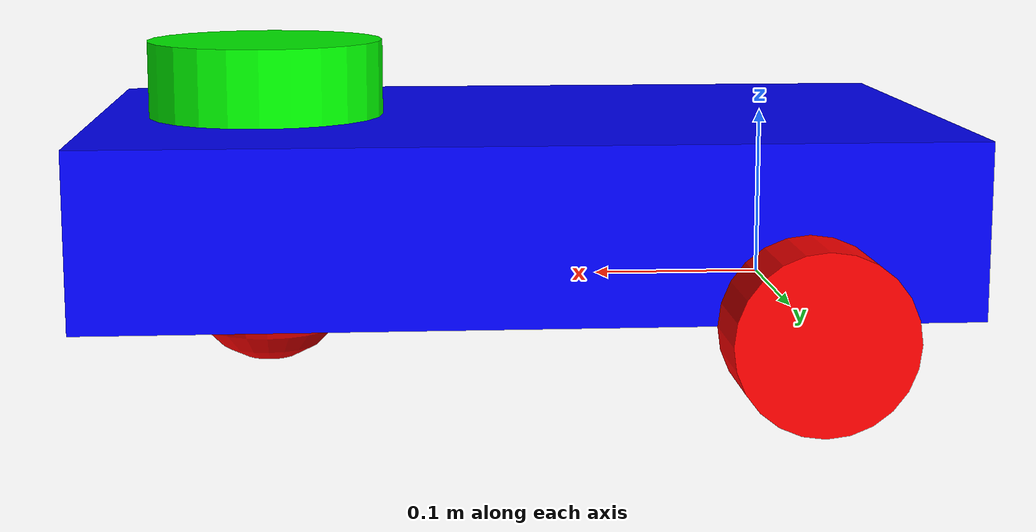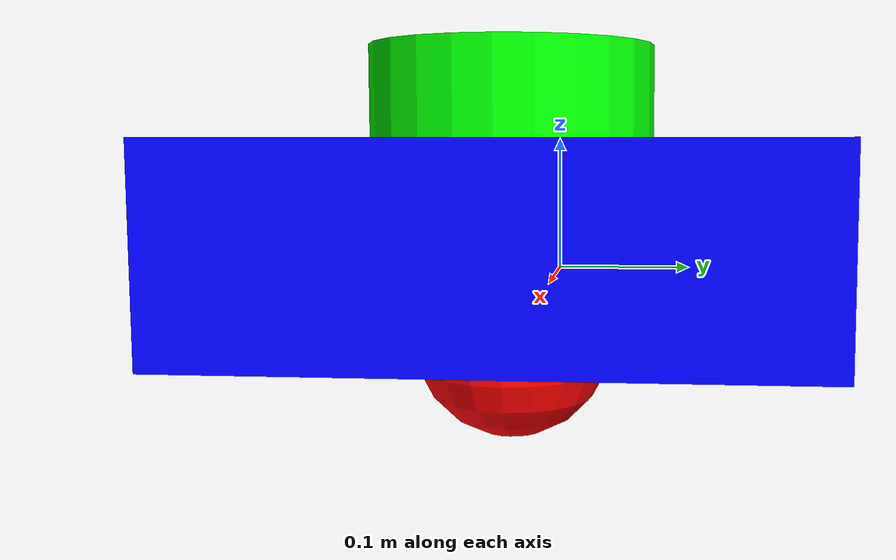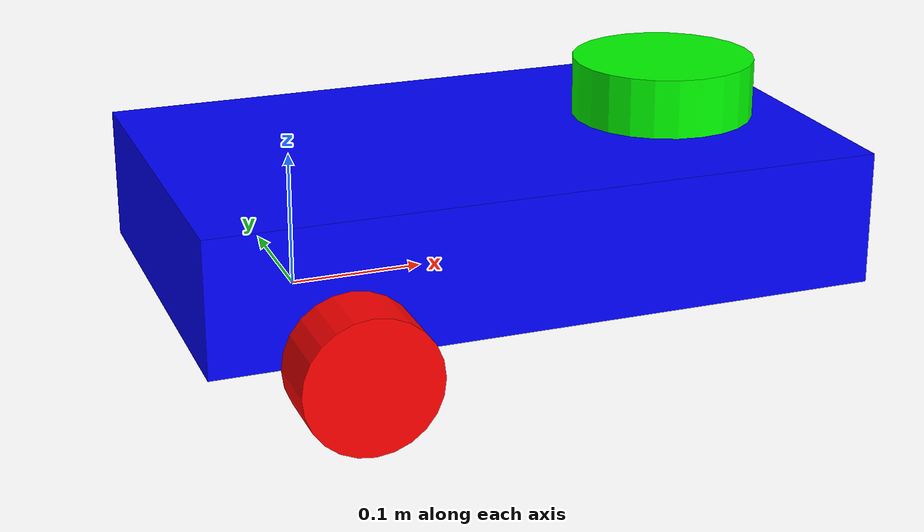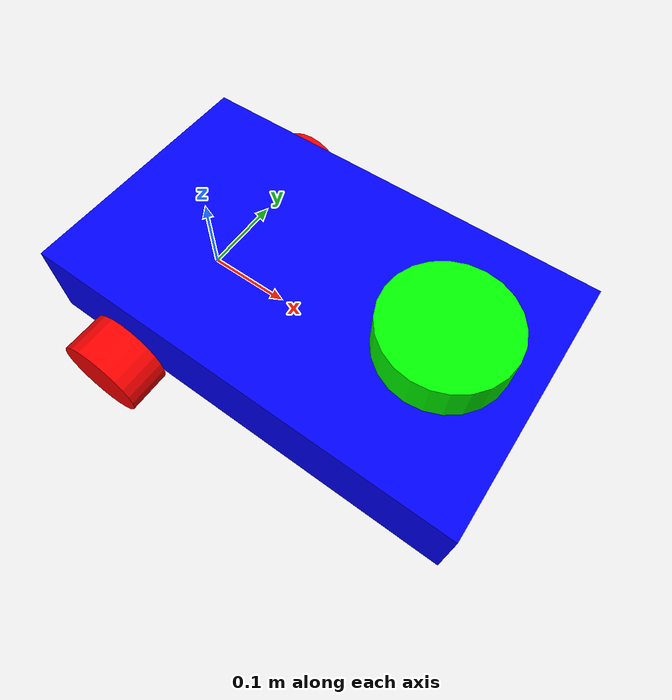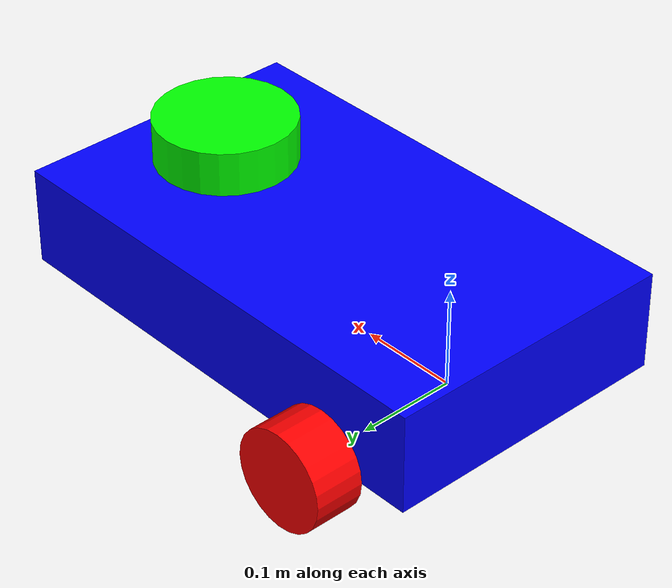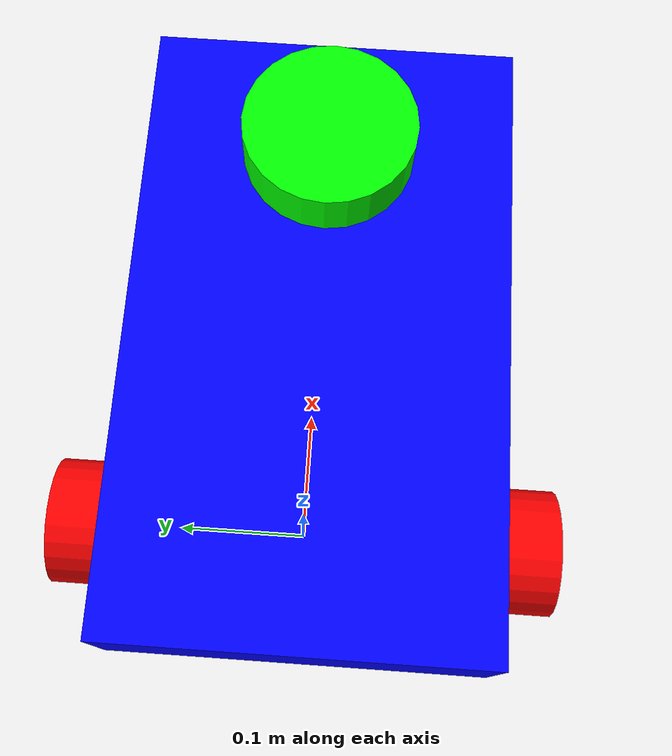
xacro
<?xml version = "1.0"?>
<robot xmlns:xacro="http://www.ros.org/wiki/xacro">

<xacro:include filename="inertial_macros.xacro"/>

<!-- Base link -->
<link name="base_link">
</link>

<!--Chassis-->
<joint name = "chassis_joint" type = "fixed">
    <parent link = "base_link"/>
    <child link= "chassis"/>
    <origin xyz = "-0.1 0 0" rpy = "0 0 0"/>
</joint>

<link name = "chassis">
    <visual>
        <origin xyz = "0.25 0 0.05" rpy = "0 0 0"/>
        <geometry>
            <box size = "0.5 0.3 0.1"/>
        </geometry>
        <material name = "blue">
            <color rgba = "0 0 1 1"/>
        </material>
    </visual>
    <collision>
        <origin xyz = "0.25 0 0.05" rpy = "0 0 0"/>
        <geometry>
            <box size = "0.5 0.3 0.1"/>
        </geometry>
    </collision>
    <xacro:inertial_box mass="0.5" x="0.5" y="0.3" z="0.1">
        <origin xyz = "0.25 0 0.05"/>
    </xacro:inertial_box>

</link>

<!-- Left wheel -->
<joint name="left_wheel_joint" type="continuous">
  <parent link="base_link"/>
  <child link="left_wheel"/>

  <!-- Wheel position relative to base -->
  <origin xyz="0 0.175 0" rpy="0 0 0"/>

  <!-- Wheel rotates about Y axis -->
  <axis xyz="0 1 0"/>
</joint>

<link name="left_wheel">

  <!-- VISUAL -->
  <visual>
    <!-- Rotate cylinder so it rolls on ground -->
    <origin xyz = "0 0 0" rpy="-1.5708 0 0"/>
    <geometry>
      <cylinder radius="0.05" length="0.05"/>
    </geometry>
    <material name="red">
      <color rgba="1 0 0 1"/>
    </material>
  </visual>

  <!-- COLLISION -->
  <collision>
    <!-- MUST match visual orientation -->
    <origin xyz ="0 0 0" rpy="-1.5708 0 0"/>
    <geometry>
      <cylinder radius="0.05" length="0.05"/>
    </geometry>
  </collision>

  <!-- INERTIAL -->
  <xacro:inertial_cylinder mass="0.1" length="0.05" radius="0.05">
    <!-- MUST match visual/collision orientation -->
    <origin xyz="0 0 0" rpy="-1.5708 0 0"/>
  </xacro:inertial_cylinder>

</link>

<!-- right wheel -->
<!-- Right wheel -->
<joint name="right_wheel_joint" type="continuous">
  <parent link="base_link"/>
  <child link="right_wheel"/>

  <!-- Wheel position relative to base -->
  <origin xyz="0 -0.175 0" rpy="0 0 0"/>

  <!-- SAME axis as left wheel -->
  <axis xyz="0 1 0"/>
</joint>

<link name="right_wheel">

  <!-- VISUAL -->
  <visual>
    <!-- Rotate cylinder so it rolls on ground -->
    <origin xyz="0 0 0" rpy="-1.5708 0 0"/>
    <geometry>
      <cylinder radius="0.05" length="0.05"/>
    </geometry>
    <material name="red">
      <color rgba="1 0 0 1"/>
    </material>
  </visual>

  <!-- COLLISION -->
  <collision>
    <!-- MUST match visual orientation -->
    <origin xyz ="0 0 0" rpy="-1.5708 0 0"/>
    <geometry>
      <cylinder radius="0.05" length="0.05"/>
    </geometry>
  </collision>

  <!-- INERTIAL -->
  <xacro:inertial_cylinder mass="0.1" length="0.05" radius="0.05">
    <!-- MUST match visual/collision orientation -->
    <origin xyz="0 0 0" rpy="-1.5708 0 0"/>
  </xacro:inertial_cylinder>

</link>

<joint name  = "lidar_joint" type = "fixed">
    <parent link = "chassis"/>
    <child link = "lidar_link"/>
    <origin xyz = "0.2 0 0" rpy = "0 0 0"/>
</joint>

<link name = "lidar_link">
    <visual>
        <origin xyz = "0.2 0 0.1"/>
        <geometry>
            <cylinder radius = "0.07" length="0.09"/>
        </geometry>
        <material name = "green">
            <color rgba = "0 1 0 1"/>
        </material>
    </visual>
    <collision>
        <origin xyz = "0.2 0 0.1"/>
        <geometry>
            <cylinder radius = "0.07" length="0.09"/>
        </geometry>
    </collision>
    <xacro:inertial_cylinder mass = "0.01" length="0.09" radius="0.07">
        <origin xyz ="0.2 0 0.1"/>
    </xacro:inertial_cylinder>
</link>

<joint name  = "casterwheel" type = "fixed">
    <parent link = "chassis"/>
    <child link = "caster_wheel"/>
    <origin xyz = "0.1 0 0" rpy = "0 0 0"/>
</joint>

<link name = "caster_wheel">
    <visual>
        <origin xyz = "0.3 0 0"/>
        <geometry>
            <sphere radius = "0.05"/>
        </geometry>
        <material name = "red">
            <color rgba = "1 0 0 1"/>
        </material>
    </visual>
    <collision>
        <origin xyz = "0.3 0 0"/>
        <geometry>
            <sphere radius = "0.05"/>
        </geometry>
    </collision>
    <xacro:inertial_sphere mass = "0.04" radius="0.05">
        <origin xyz ="0.3 0 0" rpy="0 0 0"/>
    </xacro:inertial_sphere>
</link>

<gazebo>
    <plugin
      filename="libignition-gazebo-sensors-system.so"
      name="gz::sim::systems::Sensors">
      <render_engine>ogre2</render_engine>
    </plugin>
</gazebo>

<gazebo reference="lidar_link">
    <sensor name="gpu_lidar" type="gpu_lidar">
      <pose>0 0 0 0 0 0</pose>

      <topic>scan</topic>
      <update_rate>8</update_rate>

      <lidar>
        <scan>
          <horizontal>
            <samples>720</samples>
            <resolution>1</resolution>
            <min_angle>-3.14</min_angle>
            <max_angle>3.14</max_angle>
          </horizontal>
        </scan>

        <range>
          <min>0.01</min>
          <max>12.0</max>
          <resolution>0.005</resolution>
        </range>

        <noise>
          <type>gaussian</type>
          <mean>0.0</mean>
          <stddev>0.001</stddev>
        </noise>
      </lidar>

      <always_on>1</always_on>
      <visualize>1</visualize>
    </sensor>
</gazebo>

</robot>
